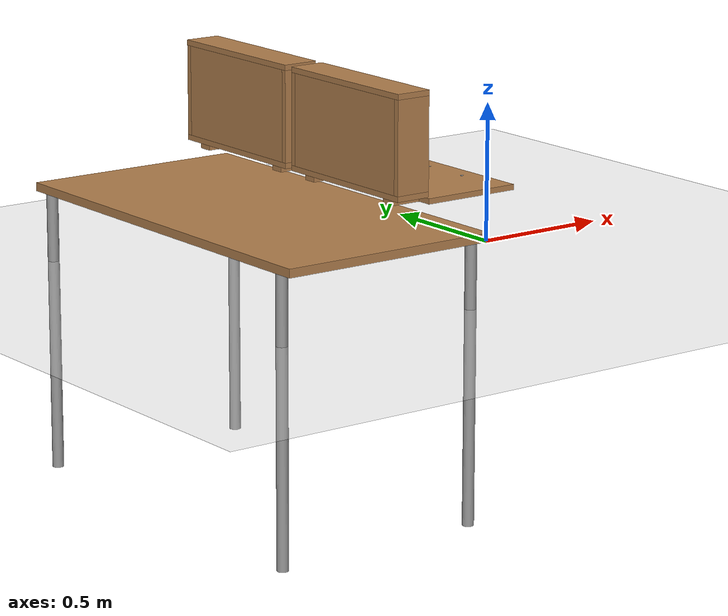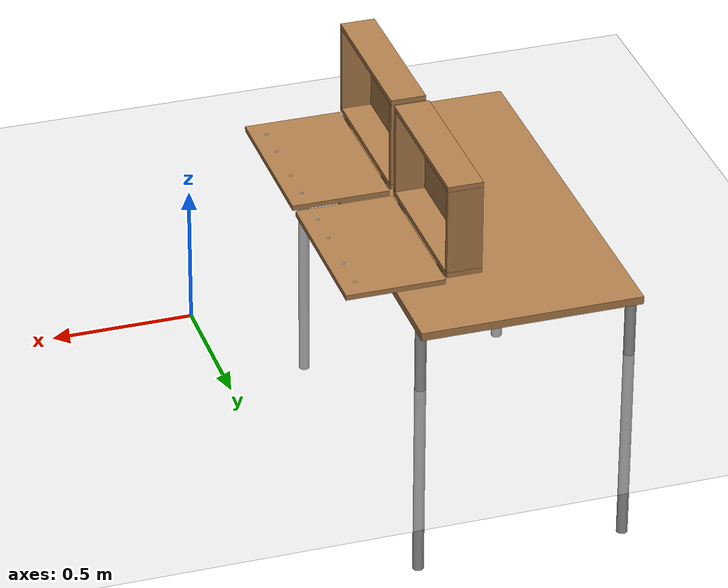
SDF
<?xml version="1.0" ?>
<sdf version="1.6">
  <world name="default">

    <!-- ground plane -->
    <include>
      <uri>model://ground_plane</uri>
    </include>

    <!-- light -->
    <include>
      <uri>model://sun</uri>
    </include>

    <scene>
      <ambient>0.4 0.4 0.4 1</ambient>
      <background>0.25 0.25 0.25 1</background>
      <shadows>false</shadows>
    </scene>
    <light type="point" name="some_light">
      <diffuse>0.7 0.7 0.7 0</diffuse>
      <specular>1 1 1 0</specular>
    </light>

-->
-->

    <!-- for sawyer -->
    <physics type="ode">
      <real_time_update_rate>1000.0</real_time_update_rate>
    </physics>

    <gravity>
      0.0 0.0 -9.81
    </gravity>

    <gui fullscreen='0'>
      <camera name='user_camera'>
        <pose frame=''>2.69836 -0.874828 2.04939 0 0.399643 2.75619</pose>
        <view_controller>orbit</view_controller>
        <projection_type>perspective</projection_type>
      </camera>
    </gui>

    <include>
        <uri>model://table</uri>
        <name>table1</name>
        <pose>-1.0 0.0 -0.75 0 0 -1.5708</pose>
    </include>
    <include>
        <uri>model://wooden_case</uri>
        <name>box1</name>
        <pose>-0.80 0.31 0.35 0 0 0</pose>
    </include>
    <include>
        <uri>model://wooden_case</uri>
        <name>box2</name>
        <pose>-0.80 -0.31 0.35 0 0 0</pose>
    </include>

  </world>
</sdf>

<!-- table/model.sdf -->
<sdf version="1.5">
  <model name="table">
    <static>true</static>
    <link name="link">
      <collision name="surface">
        <pose>0 0 1.0 0 0 0</pose>
        <geometry>
          <box>
            <size>1.5 0.8 0.03</size>
          </box>
        </geometry>
        <surface>
          <friction>
            <ode>
              <mu>0.6</mu>
              <mu2>0.6</mu2>
            </ode>
          </friction>
        </surface>
      </collision>
      <visual name="visual1">
        <pose>0 0 1.0 0 0 0</pose>
        <geometry>
          <box>
            <size>1.5 0.8 0.03</size>
          </box>
        </geometry>
        <material>
          <script>
            <uri>model://media/materials/scripts/gazebo.material</uri>
            <name>Gazebo/Wood</name>
          </script>
        </material>
      </visual>
      <collision name="front_left_leg">
        <pose>0.68 0.38 0.5 0 0 0</pose>
        <geometry>
          <cylinder>
            <radius>0.02</radius>
            <length>1.0</length>
          </cylinder>
        </geometry>
      </collision>
      <visual name="front_left_leg">
        <pose>0.68 0.38 0.5 0 0 0</pose>
        <geometry>
          <cylinder>
            <radius>0.02</radius>
            <length>1.0</length>
          </cylinder>
        </geometry>
        <material>
          <script>
            <uri>model://media/materials/scripts/gazebo.material</uri>
            <name>Gazebo/Grey</name>
          </script>
        </material>
      </visual>
      <collision name="front_right_leg">
        <pose>0.68 -0.38 0.5 0 0 0</pose>
        <geometry>
          <cylinder>
            <radius>0.02</radius>
            <length>1.0</length>
          </cylinder>
        </geometry>
      </collision>
      <visual name="front_right_leg">
        <pose>0.68 -0.38 0.5 0 0 0</pose>
        <geometry>
          <cylinder>
            <radius>0.02</radius>
            <length>1.0</length>
          </cylinder>
        </geometry>
        <material>
          <script>
            <uri>model://media/materials/scripts/gazebo.material</uri>
            <name>Gazebo/Grey</name>
          </script>
        </material>
      </visual>
      <collision name="back_right_leg">
        <pose>-0.68 -0.38 0.5 0 0 0</pose>
        <geometry>
          <cylinder>
            <radius>0.02</radius>
            <length>1.0</length>
          </cylinder>
        </geometry>
      </collision>
      <visual name="back_right_leg">
        <pose>-0.68 -0.38 0.5 0 0 0</pose>
        <geometry>
          <cylinder>
            <radius>0.02</radius>
            <length>1.0</length>
          </cylinder>
        </geometry>
        <material>
          <script>
            <uri>model://media/materials/scripts/gazebo.material</uri>
            <name>Gazebo/Grey</name>
          </script>
        </material>
      </visual>
      <collision name="back_left_leg">
        <pose>-0.68 0.38 0.5 0 0 0</pose>
        <geometry>
          <cylinder>
            <radius>0.02</radius>
            <length>1.0</length>
          </cylinder>
        </geometry>
      </collision>
      <visual name="back_left_leg">
        <pose>-0.68 0.38 0.5 0 0 0</pose>
        <geometry>
          <cylinder>
            <radius>0.02</radius>
            <length>1.0</length>
          </cylinder>
        </geometry>
        <material>
          <script>
            <uri>model://media/materials/scripts/gazebo.material</uri>
            <name>Gazebo/Grey</name>
          </script>
        </material>
      </visual>
    </link>
  </model>
</sdf>

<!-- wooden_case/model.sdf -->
<sdf version="1.5">
  <model name="wooden_case">
    <link name="base">

      <pose>0 0 0.024  0 0 0</pose>
      <inertial>
        <pose>-0.02218446808213116 0.0 0.17159249678128843  0 0 0</pose>
        <mass>3.9626366887499986</mass>
        <inertia>
          <ixx>0.2135364168029657</ixx>
          <ixy>0.0</ixy>
          <ixz>0.0007793770806417083</ixz>
          <iyy>0.07089428398599372</iyy>
          <iyz>0.0</iyz>
          <izz>0.15460392299497075</izz>
        </inertia>
      </inertial>

      <collision name="collision_back">
        <pose>-0.053975 0 0.17779999999999999  0 0 0</pose>
        <geometry>
          <box>
            <size>0.019049999999999997 0.5460999999999999 0.3175</size>
          </box>
        </geometry>
        <surface>
          <contact>

            <poissons_ratio>0.347</poissons_ratio>
            <elastic_modulus>8.8e+09</elastic_modulus>
            <ode>
              <kp>100000</kp>
              <kd>100</kd>
              <max_vel>100.0</max_vel>
              <min_depth>0.001</min_depth>
            </ode>
          </contact>
          <friction>
            <torsional>
              <coefficient>1.0</coefficient>
              <use_patch_radius>0</use_patch_radius>
              <surface_radius>0.01</surface_radius>
            </torsional>
          </friction>
        </surface>
      </collision>
      <visual name="visual_back">
        <pose>-0.053975 0 0.17779999999999999  0 0 0</pose>
        <geometry>
          <box>
            <size>0.019049999999999997 0.5460999999999999 0.3175</size>
          </box>
        </geometry>
        <material>
          <script>
            <uri>model://media/materials/scripts/gazebo.material</uri>
            <name>Gazebo/Wood</name>
          </script>
        </material>
      </visual>

      <collision name="collision_bottom">
        <pose>0 0 0.009524999999999999  0 0 0</pose>
        <geometry>
          <box>
            <size>0.127 0.5841999999999999 0.019049999999999997</size>
          </box>
        </geometry>
        <surface>
          <contact>

            <poissons_ratio>0.347</poissons_ratio>
            <elastic_modulus>8.8e+09</elastic_modulus>
            <ode>
              <kp>100000</kp>
              <kd>100</kd>
              <max_vel>100.0</max_vel>
              <min_depth>0.001</min_depth>
            </ode>
          </contact>
          <friction>
            <torsional>
              <coefficient>1.0</coefficient>
              <use_patch_radius>0</use_patch_radius>
              <surface_radius>0.01</surface_radius>
            </torsional>
          </friction>
        </surface>
      </collision>
      <visual name="visual_bottom">
        <pose>0 0 0.009524999999999999  0 0 0</pose>
        <geometry>
          <box>
            <size>0.127 0.5841999999999999 0.019049999999999997</size>
          </box>
        </geometry>
        <material>
          <script>
            <uri>model://media/materials/scripts/gazebo.material</uri>
            <name>Gazebo/Wood</name>
          </script>
        </material>
      </visual>

      <collision name="collision_top">
        <pose>0 0 0.34607499999999997  0 0 0</pose>
        <geometry>
          <box>
            <size>0.127 0.5841999999999999 0.019049999999999997</size>
          </box>
        </geometry>
        <surface>
          <contact>

            <poissons_ratio>0.347</poissons_ratio>
            <elastic_modulus>8.8e+09</elastic_modulus>
            <ode>
              <kp>100000</kp>
              <kd>100</kd>
              <max_vel>100.0</max_vel>
              <min_depth>0.001</min_depth>
            </ode>
          </contact>
          <friction>
            <torsional>
              <coefficient>1.0</coefficient>
              <use_patch_radius>0</use_patch_radius>
              <surface_radius>0.01</surface_radius>
            </torsional>
          </friction>
        </surface>
      </collision>
      <visual name="visual_top">
        <pose>0 0 0.34607499999999997  0 0 0</pose>
        <geometry>
          <box>
            <size>0.127 0.5841999999999999 0.019049999999999997</size>
          </box>
        </geometry>
        <material>
          <script>
            <uri>model://media/materials/scripts/gazebo.material</uri>
            <name>Gazebo/Wood</name>
          </script>
        </material>
      </visual>

      <collision name="collision_left">
        <pose>0 -0.28257499999999997 0.17779999999999999  0 0 0</pose>
        <geometry>
          <box>
            <size>0.127 0.019049999999999997 0.3175</size>
          </box>
        </geometry>
        <surface>
          <contact>

            <poissons_ratio>0.347</poissons_ratio>
            <elastic_modulus>8.8e+09</elastic_modulus>
            <ode>
              <kp>100000</kp>
              <kd>100</kd>
              <max_vel>100.0</max_vel>
              <min_depth>0.001</min_depth>
            </ode>
          </contact>
          <friction>
            <torsional>
              <coefficient>1.0</coefficient>
              <use_patch_radius>0</use_patch_radius>
              <surface_radius>0.01</surface_radius>
            </torsional>
          </friction>
        </surface>
      </collision>
      <visual name="visual_left">
        <pose>0 -0.28257499999999997 0.17779999999999999  0 0 0</pose>
        <geometry>
          <box>
            <size>0.127 0.019049999999999997 0.3175</size>
          </box>
        </geometry>
        <material>
          <script>
            <uri>model://media/materials/scripts/gazebo.material</uri>
            <name>Gazebo/Wood</name>
          </script>
        </material>
      </visual>

      <collision name="collision_right">
        <pose>0 0.28257499999999997 0.17779999999999999  0 0 0</pose>
        <geometry>
          <box>
            <size>0.127 0.019049999999999997 0.3175</size>
          </box>
        </geometry>
        <surface>
          <contact>

            <poissons_ratio>0.347</poissons_ratio>
            <elastic_modulus>8.8e+09</elastic_modulus>
            <ode>
              <kp>100000</kp>
              <kd>100</kd>
              <max_vel>100.0</max_vel>
              <min_depth>0.001</min_depth>
            </ode>
          </contact>
          <friction>
            <torsional>
              <coefficient>1.0</coefficient>
              <use_patch_radius>0</use_patch_radius>
              <surface_radius>0.01</surface_radius>
            </torsional>
          </friction>
        </surface>
      </collision>
      <visual name="visual_right">
        <pose>0 0.28257499999999997 0.17779999999999999  0 0 0</pose>
        <geometry>
          <box>
            <size>0.127 0.019049999999999997 0.3175</size>
          </box>
        </geometry>
        <material>
          <script>
            <uri>model://media/materials/scripts/gazebo.material</uri>
            <name>Gazebo/Wood</name>
          </script>
        </material>
      </visual>

      <collision name="collision_block_left">
        <pose>0.009500000000000001 -0.21509999999999996 -0.012  0 0 0</pose>
        <geometry>
          <box>
            <size>0.108 0.05 0.024</size>
          </box>
        </geometry>
        <surface>
          <contact>

            <poissons_ratio>0.347</poissons_ratio>
            <elastic_modulus>8.8e+09</elastic_modulus>
            <ode>
              <kp>100000</kp>
              <kd>100</kd>
              <max_vel>100.0</max_vel>
              <min_depth>0.001</min_depth>
            </ode>
          </contact>
          <friction>
            <torsional>
              <coefficient>1.0</coefficient>
              <use_patch_radius>0</use_patch_radius>
              <surface_radius>0.01</surface_radius>
            </torsional>
          </friction>
        </surface>
      </collision>
      <visual name="visual_block_left">
        <pose>0.009500000000000001 -0.21509999999999996 -0.012  0 0 0</pose>
        <geometry>
          <box>
            <size>0.108 0.05 0.024</size>
          </box>
        </geometry>
        <material>
          <script>
            <uri>model://media/materials/scripts/gazebo.material</uri>
            <name>Gazebo/Wood</name>
          </script>
        </material>
      </visual>

      <collision name="collision_block_right">
        <pose>0.009500000000000001 0.21509999999999996 -0.012  0 0 0</pose>
        <geometry>
          <box>
            <size>0.108 0.05 0.024</size>
          </box>
        </geometry>
        <surface>
          <contact>

            <poissons_ratio>0.347</poissons_ratio>
            <elastic_modulus>8.8e+09</elastic_modulus>
            <ode>
              <kp>100000</kp>
              <kd>100</kd>
              <max_vel>100.0</max_vel>
              <min_depth>0.001</min_depth>
            </ode>
          </contact>
          <friction>
            <torsional>
              <coefficient>1.0</coefficient>
              <use_patch_radius>0</use_patch_radius>
              <surface_radius>0.01</surface_radius>
            </torsional>
          </friction>
        </surface>
      </collision>
      <visual name="visual_block_right">
        <pose>0.009500000000000001 0.21509999999999996 -0.012  0 0 0</pose>
        <geometry>
          <box>
            <size>0.108 0.05 0.024</size>
          </box>
        </geometry>
        <material>
          <script>
            <uri>model://media/materials/scripts/gazebo.material</uri>
            <name>Gazebo/Wood</name>
          </script>
        </material>
      </visual>

    </link>

    <link name="lid">

      <pose>0.24377499999999996 0 0.009524999999999999  0 0 0</pose>
      <inertial>
        <mass>1.9787379779999992</mass>
        <inertia>
          <ixx>0.05633673842708405</ixx>
          <ixy>0</ixy>
          <ixz>0</ixz>
          <iyy>0.020911016446734258</iyy>
          <iyz>0</iyz>
          <izz>0.07712807338064145</izz>
        </inertia>
      </inertial>
      <collision name="collision">
        <geometry>
          <box>
            <size>0.35559999999999997 0.5841999999999999 0.019049999999999997</size>
          </box>
        </geometry>
        <surface>
          <contact>

            <poissons_ratio>0.347</poissons_ratio>
            <elastic_modulus>8.8e+09</elastic_modulus>
            <ode>
              <kp>100000</kp>
              <kd>100</kd>
              <max_vel>100.0</max_vel>
              <min_depth>0.001</min_depth>
            </ode>
          </contact>
          <friction>
            <torsional>
              <coefficient>1.0</coefficient>
              <use_patch_radius>0</use_patch_radius>
              <surface_radius>0.01</surface_radius>
            </torsional>
          </friction>
        </surface>
      </collision>
      <visual name="visual">
        <geometry>
          <box>
            <size>0.35559999999999997 0.5841999999999999 0.019049999999999997</size>
          </box>
        </geometry>
        <material>
          <script>
            <uri>model://media/materials/scripts/gazebo.material</uri>
            <name>Gazebo/Wood</name>
          </script>
        </material>
      </visual>

      <visual name="tee_nut_1">
        <pose>0.122 -0.216 0.0  0 0 0</pose>
        <geometry>
          <cylinder>
            <radius>0.00635</radius>
            <length>0.019240499999999997</length>
          </cylinder>
        </geometry>
        <material>
          <script>
            <uri>model://media/materials/scripts/gazebo.material</uri>
            <name>Gazebo/Grey</name>
          </script>
        </material>
      </visual>

      <visual name="tee_nut_2">
        <pose>0.122 -0.088 0.0  0 0 0</pose>
        <geometry>
          <cylinder>
            <radius>0.00635</radius>
            <length>0.019240499999999997</length>
          </cylinder>
        </geometry>
        <material>
          <script>
            <uri>model://media/materials/scripts/gazebo.material</uri>
            <name>Gazebo/Grey</name>
          </script>
        </material>
      </visual>

      <visual name="tee_nut_3">
        <pose>0.122 0.088 0.0  0 0 0</pose>
        <geometry>
          <cylinder>
            <radius>0.00635</radius>
            <length>0.019240499999999997</length>
          </cylinder>
        </geometry>
        <material>
          <script>
            <uri>model://media/materials/scripts/gazebo.material</uri>
            <name>Gazebo/Grey</name>
          </script>
        </material>
      </visual>

      <visual name="tee_nut_4">
        <pose>0.122 0.216 0.0  0 0 0</pose>
        <geometry>
          <cylinder>
            <radius>0.00635</radius>
            <length>0.019240499999999997</length>
          </cylinder>
        </geometry>
        <material>
          <script>
            <uri>model://media/materials/scripts/gazebo.material</uri>
            <name>Gazebo/Grey</name>
          </script>
        </material>
      </visual>

    </link>

    <joint name="lid_hinge" type="revolute">
      <pose>-0.17779999999999999 0 0.019049999999999997  0 0 0</pose>
      <parent>base</parent>
      <child>lid</child>
      <axis>
        <xyz>0 1 0</xyz>
        <limit>
          <upper>0.5235987755982988</upper>
          <lower>-1.5707963267948966</lower>
        </limit>
      </axis>
    </joint>

  </model>
</sdf>
